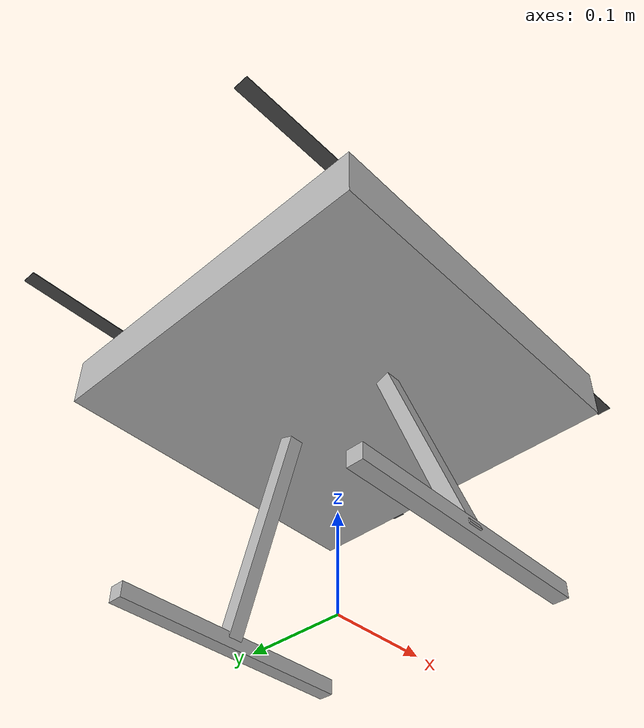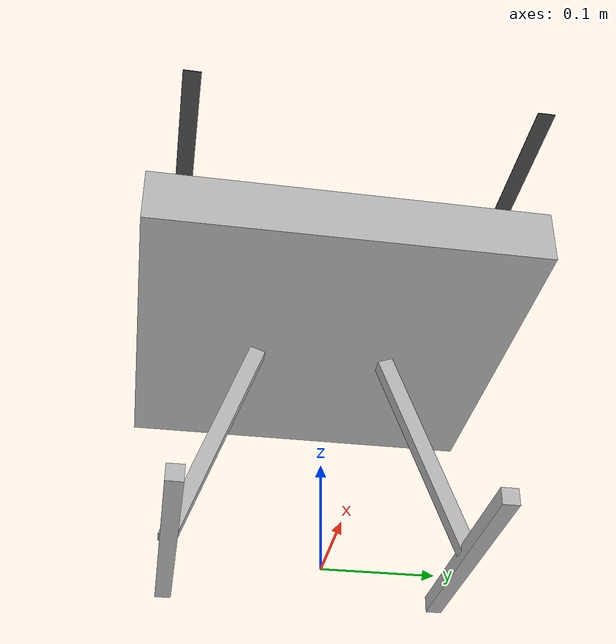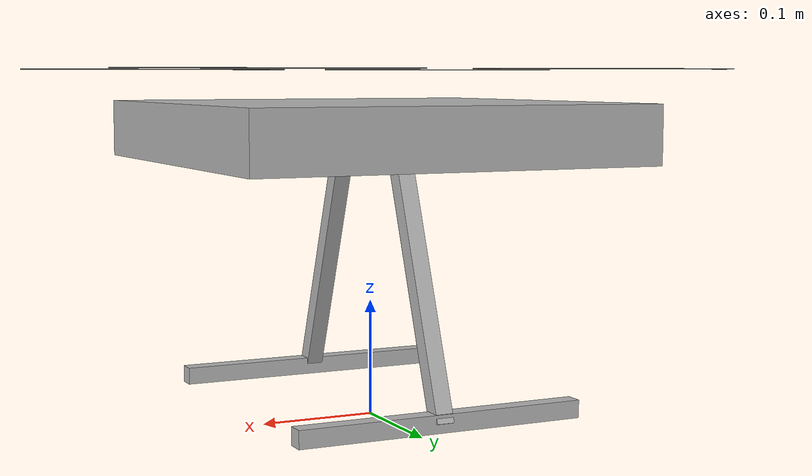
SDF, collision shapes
<?xml version="1.0" encoding="UTF-8"?>
<sdf version='1.9'>
  <model name='p450_v2'>
    <pose>0 0 .24 0 0 0</pose>
    <self_collide>false</self_collide>
    <static>false</static>
    <link name="base_link">
      <inertial>
        <mass>2.0</mass>
        <inertia>
          <ixx>0.02166666666666667</ixx>
          <ixy>0</ixy>
          <ixz>0</ixz>
          <iyy>0.02166666666666667</iyy>
          <iyz>0</iyz>
          <izz>0.04000000000000001</izz>
        </inertia>
      </inertial>
      <gravity>true</gravity>
      <velocity_decay/>
      <!-- Appearance only: dynamics, sensors and collisions remain the PX4 x500 baseline. -->
      <visual name="amov_p450_v3_body_visual">
        <!-- PX4's spawn request overrides the model-level pose; align CAD skids to the settled x500 collision feet. -->
        <!-- GLB is Y-up; rotate it into Gazebo's Z-up frame. -->
        <pose>0 0 -0.22 1.570796327 0 0</pose>
        <geometry>
          <mesh>
            <scale>1 1 1</scale>
            <uri>model://p450_v2/meshes/amov_p450_gazebo_body.glb</uri>
          </mesh>
        </geometry>
      </visual>
      <collision name="base_link_collision_0">
        <pose>0 0 .007 0 0 0</pose>
        <geometry>
          <box>
            <size>0.35355339059327373 0.35355339059327373 0.05</size>
          </box>
        </geometry>
        <surface>
          <contact>
            <ode>
              <min_depth>0.001</min_depth>
              <max_vel>0</max_vel>
            </ode>
          </contact>
          <friction>
            <ode/>
          </friction>
        </surface>
      </collision>
      <collision name="base_link_collision_1">
        <pose>0 -0.098 -.123 -0.35 0 0</pose>
        <geometry>
          <box>
            <size>0.015 0.015 0.21</size>
          </box>
        </geometry>
        <surface>
          <contact>
            <ode>
              <min_depth>0.001</min_depth>
              <max_vel>0</max_vel>
            </ode>
          </contact>
          <friction>
            <ode/>
          </friction>
        </surface>
      </collision>
      <collision name="base_link_collision_2">
        <pose>0 0.098 -.123 0.35 0 0</pose>
        <geometry>
          <box>
            <size>0.015 0.015 0.21</size>
          </box>
        </geometry>
        <surface>
          <contact>
            <ode>
              <min_depth>0.001</min_depth>
              <max_vel>0</max_vel>
            </ode>
          </contact>
          <friction>
            <ode/>
          </friction>
        </surface>
      </collision>
      <collision name="base_link_collision_3">
        <pose>0 -0.132 -.2195 0 0 0</pose>
        <geometry>
          <box>
            <size>0.25 0.015 0.015</size>
          </box>
        </geometry>
        <surface>
          <contact>
            <ode>
              <min_depth>0.001</min_depth>
              <max_vel>0</max_vel>
            </ode>
          </contact>
          <friction>
            <ode/>
          </friction>
        </surface>
      </collision>
      <collision name="base_link_collision_4">
        <pose>0 0.132 -.2195 0 0 0</pose>
        <geometry>
          <box>
            <size>0.25 0.015 0.015</size>
          </box>
        </geometry>
        <surface>
          <contact>
            <ode>
              <min_depth>0.001</min_depth>
              <max_vel>0</max_vel>
            </ode>
          </contact>
          <friction>
            <ode/>
          </friction>
        </surface>
      </collision>
      <sensor name="air_pressure_sensor" type="air_pressure">
        <always_on>1</always_on>
        <update_rate>50</update_rate>
        <air_pressure>
          <pressure>
            <noise type="gaussian">
              <mean>0</mean>
              <stddev>0.01</stddev>
            </noise>
          </pressure>
        </air_pressure>
      </sensor>
      <sensor name="imu_sensor" type="imu">
        <always_on>1</always_on>
        <update_rate>250</update_rate>
      </sensor>
    </link>
    <link name="rotor_0">
      <gravity>true</gravity>
      <self_collide>false</self_collide>
      <velocity_decay/>
      <!-- P450 410 mm diagonal wheelbase: motor X/Y = 410 / (2 sqrt(2)) mm. -->
      <pose>0.144956890 -0.144956890 0.06 0 0 0</pose>
      <inertial>
          <mass>0.016076923076923075</mass>
          <inertia>
            <ixx>3.8464910483993325e-07</ixx>
            <iyy>2.6115851691700804e-05</iyy>
            <izz>2.649858234714004e-05</izz>
          </inertia>
        </inertial>
      <visual name="rotor_0_visual">
        <!-- Native x500 mesh, scaled to the P450 254 mm prop and centred on this rotor link. -->
        <pose>-0.019097971878 -0.127 -0.141319256184 0 0 0</pose>
        <geometry>
          <mesh>
            <scale>0.734104258412 0.734104258412 0.734104258412</scale>
            <uri>model://x500/meshes/1345_prop_ccw.stl</uri>
          </mesh>
        </geometry>
        <material>
          <script>
            <name>Gazebo/DarkGrey</name>
            <uri>file://media/materials/scripts/gazebo.material</uri>
          </script>
        </material>
      </visual>
      <collision name="rotor_0_collision">
        <pose>0 0 0 0 0 0 </pose>
        <geometry>
          <box>
            <size>0.242254405276 0.014682085168 0.000734104258</size>
          </box>
        </geometry>
        <surface>
          <contact>
            <ode>
              <min_depth>0.001</min_depth>
              <max_vel>0</max_vel>
            </ode>
          </contact>
          <friction>
            <ode/>
          </friction>
        </surface>
      </collision>
    </link>
    <joint name="rotor_0_joint" type="revolute">
      <parent>base_link</parent>
      <child>rotor_0</child>
      <axis>
        <xyz>0 0 1</xyz>
        <limit>
          <lower>-1e+16</lower>
          <upper>1e+16</upper>
        </limit>
        <dynamics>
          <spring_reference>0</spring_reference>
          <spring_stiffness>0</spring_stiffness>
        </dynamics>
      </axis>
    </joint>
    <link name="rotor_1">
      <gravity>true</gravity>
      <self_collide>false</self_collide>
      <velocity_decay/>
      <pose>-0.144956890 0.144956890 0.06 0 0 0</pose>
      <inertial>
          <mass>0.016076923076923075</mass>
          <inertia>
            <ixx>3.8464910483993325e-07</ixx>
            <iyy>2.6115851691700804e-05</iyy>
            <izz>2.649858234714004e-05</izz>
          </inertia>
        </inertial>
      <visual name="rotor_1_visual">
        <pose>-0.019097971878 -0.127 -0.141319256184 0 0 0</pose>
        <geometry>
          <mesh>
            <scale>0.734104258412 0.734104258412 0.734104258412</scale>
            <uri>model://x500/meshes/1345_prop_ccw.stl</uri>
          </mesh>
        </geometry>
        <material>
          <script>
            <name>Gazebo/DarkGrey</name>
            <uri>file://media/materials/scripts/gazebo.material</uri>
          </script>
        </material>
      </visual>
      <collision name="rotor_1_collision">
        <pose>0 0 0 0 0 0 </pose>
        <geometry>
          <box>
            <size>0.242254405276 0.014682085168 0.000734104258</size>
          </box>
        </geometry>
        <surface>
          <contact>
            <ode>
              <min_depth>0.001</min_depth>
              <max_vel>0</max_vel>
            </ode>
          </contact>
          <friction>
            <ode/>
          </friction>
        </surface>
      </collision>
    </link>
    <joint name="rotor_1_joint" type="revolute">
      <parent>base_link</parent>
      <child>rotor_1</child>
      <axis>
        <xyz>0 0 1</xyz>
        <limit>
          <lower>-1e+16</lower>
          <upper>1e+16</upper>
        </limit>
        <dynamics>
          <spring_reference>0</spring_reference>
          <spring_stiffness>0</spring_stiffness>
        </dynamics>
      </axis>
    </joint>
    <link name="rotor_2">
      <gravity>true</gravity>
      <self_collide>false</self_collide>
      <velocity_decay/>
      <pose>0.144956890 0.144956890 0.06 0 0 0</pose>
      <inertial>
          <mass>0.016076923076923075</mass>
          <inertia>
            <ixx>3.8464910483993325e-07</ixx>
            <iyy>2.6115851691700804e-05</iyy>
            <izz>2.649858234714004e-05</izz>
          </inertia>
        </inertial>
      <visual name="rotor_2_visual">
        <pose>-0.019097971878 -0.127 -0.141319256184 0 0 0</pose>
        <geometry>
          <mesh>
            <scale>0.734104258412 0.734104258412 0.734104258412</scale>
            <uri>model://x500/meshes/1345_prop_cw.stl</uri>
          </mesh>
        </geometry>
        <material>
          <script>
            <name>Gazebo/DarkGrey</name>
            <uri>file://media/materials/scripts/gazebo.material</uri>
          </script>
        </material>
      </visual>
      <collision name="rotor_2_collision">
        <pose>0 0 0 0 0 0 </pose>
        <geometry>
          <box>
            <size>0.242254405276 0.014682085168 0.000734104258</size>
          </box>
        </geometry>
        <surface>
          <contact>
            <ode>
              <min_depth>0.001</min_depth>
              <max_vel>0</max_vel>
            </ode>
          </contact>
          <friction>
            <ode/>
          </friction>
        </surface>
      </collision>
    </link>
    <joint name="rotor_2_joint" type="revolute">
      <parent>base_link</parent>
      <child>rotor_2</child>
      <axis>
        <xyz>0 0 1</xyz>
        <limit>
          <lower>-1e+16</lower>
          <upper>1e+16</upper>
        </limit>
        <dynamics>
          <spring_reference>0</spring_reference>
          <spring_stiffness>0</spring_stiffness>
        </dynamics>
      </axis>
    </joint>
    <link name="rotor_3">
      <gravity>true</gravity>
      <self_collide>false</self_collide>
      <velocity_decay/>
      <pose>-0.144956890 -0.144956890 0.06 0 0 0</pose>
      <inertial>
          <mass>0.016076923076923075</mass>
          <inertia>
            <ixx>3.8464910483993325e-07</ixx>
            <iyy>2.6115851691700804e-05</iyy>
            <izz>2.649858234714004e-05</izz>
          </inertia>
        </inertial>
      <visual name="rotor_3_visual">
        <pose>-0.019097971878 -0.127 -0.141319256184 0 0 0</pose>
        <geometry>
          <mesh>
            <scale>0.734104258412 0.734104258412 0.734104258412</scale>
            <uri>model://x500/meshes/1345_prop_cw.stl</uri>
          </mesh>
        </geometry>
        <material>
          <script>
            <name>Gazebo/DarkGrey</name>
            <uri>file://media/materials/scripts/gazebo.material</uri>
          </script>
        </material>
      </visual>
      <collision name="rotor_3_collision">
        <pose>0 0 0 0 0 0 </pose>
        <geometry>
          <box>
            <size>0.242254405276 0.014682085168 0.000734104258</size>
          </box>
        </geometry>
        <surface>
          <contact>
            <ode>
              <min_depth>0.001</min_depth>
              <max_vel>0</max_vel>
            </ode>
          </contact>
          <friction>
            <ode/>
          </friction>
        </surface>
      </collision>
    </link>
    <joint name="rotor_3_joint" type="revolute">
      <parent>base_link</parent>
      <child>rotor_3</child>
      <axis>
        <xyz>0 0 1</xyz>
        <limit>
          <lower>-1e+16</lower>
          <upper>1e+16</upper>
        </limit>
        <dynamics>
          <spring_reference>0</spring_reference>
          <spring_stiffness>0</spring_stiffness>
        </dynamics>
      </axis>
    </joint>
   <plugin filename="gz-sim-multicopter-motor-model-system" name="gz::sim::systems::MulticopterMotorModel">
      <jointName>rotor_0_joint</jointName>
      <linkName>rotor_0</linkName>
      <turningDirection>ccw</turningDirection>
      <timeConstantUp>0.0125</timeConstantUp>
      <timeConstantDown>0.025</timeConstantDown>
      <maxRotVelocity>1000.0</maxRotVelocity>
      <motorConstant>8.54858e-06</motorConstant>
      <momentConstant>0.016</momentConstant>
      <commandSubTopic>command/motor_speed</commandSubTopic>
      <motorNumber>0</motorNumber>
      <rotorDragCoefficient>8.06428e-05</rotorDragCoefficient>
      <rollingMomentCoefficient>1e-06</rollingMomentCoefficient>
      <rotorVelocitySlowdownSim>10</rotorVelocitySlowdownSim>
      <motorType>velocity</motorType>
    </plugin>
    <plugin filename="gz-sim-multicopter-motor-model-system" name="gz::sim::systems::MulticopterMotorModel">
      <jointName>rotor_1_joint</jointName>
      <linkName>rotor_1</linkName>
      <turningDirection>ccw</turningDirection>
      <timeConstantUp>0.0125</timeConstantUp>
      <timeConstantDown>0.025</timeConstantDown>
      <maxRotVelocity>1000.0</maxRotVelocity>
      <motorConstant>8.54858e-06</motorConstant>
      <momentConstant>0.016</momentConstant>
      <commandSubTopic>command/motor_speed</commandSubTopic>
      <motorNumber>1</motorNumber>
      <rotorDragCoefficient>8.06428e-05</rotorDragCoefficient>
      <rollingMomentCoefficient>1e-06</rollingMomentCoefficient>
      <rotorVelocitySlowdownSim>10</rotorVelocitySlowdownSim>
      <motorType>velocity</motorType>
    </plugin>
    <plugin filename="gz-sim-multicopter-motor-model-system" name="gz::sim::systems::MulticopterMotorModel">
      <jointName>rotor_2_joint</jointName>
      <linkName>rotor_2</linkName>
      <turningDirection>cw</turningDirection>
      <timeConstantUp>0.0125</timeConstantUp>
      <timeConstantDown>0.025</timeConstantDown>
      <maxRotVelocity>1000.0</maxRotVelocity>
      <motorConstant>8.54858e-06</motorConstant>
      <momentConstant>0.016</momentConstant>
      <commandSubTopic>command/motor_speed</commandSubTopic>
      <motorNumber>2</motorNumber>
      <rotorDragCoefficient>8.06428e-05</rotorDragCoefficient>
      <rollingMomentCoefficient>1e-06</rollingMomentCoefficient>
      <rotorVelocitySlowdownSim>10</rotorVelocitySlowdownSim>
      <motorType>velocity</motorType>
    </plugin>
    <plugin filename="gz-sim-multicopter-motor-model-system" name="gz::sim::systems::MulticopterMotorModel">
      <jointName>rotor_3_joint</jointName>
      <linkName>rotor_3</linkName>
      <turningDirection>cw</turningDirection>
      <timeConstantUp>0.0125</timeConstantUp>
      <timeConstantDown>0.025</timeConstantDown>
      <maxRotVelocity>1000.0</maxRotVelocity>
      <motorConstant>8.54858e-06</motorConstant>
      <momentConstant>0.016</momentConstant>
      <commandSubTopic>command/motor_speed</commandSubTopic>
      <motorNumber>3</motorNumber>
      <rotorDragCoefficient>8.06428e-05</rotorDragCoefficient>
      <rollingMomentCoefficient>1e-06</rollingMomentCoefficient>
      <rotorVelocitySlowdownSim>10</rotorVelocitySlowdownSim>
      <motorType>velocity</motorType>
    </plugin>
  </model>
</sdf>
